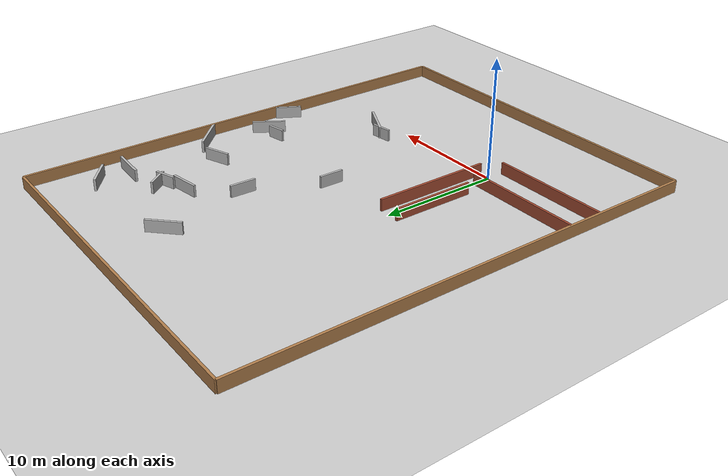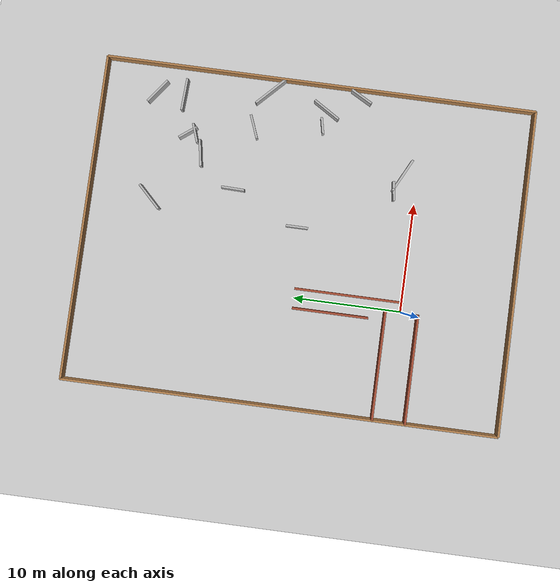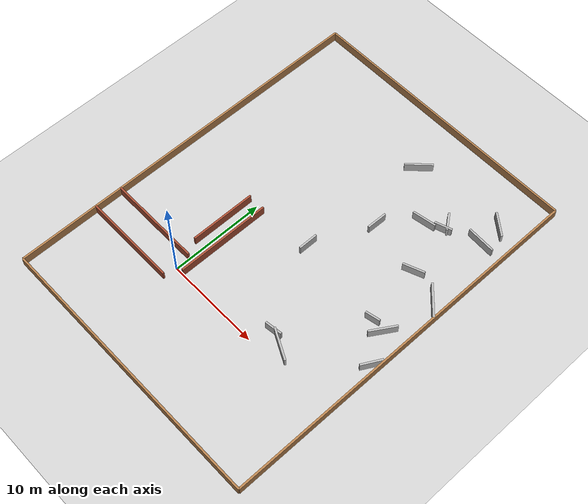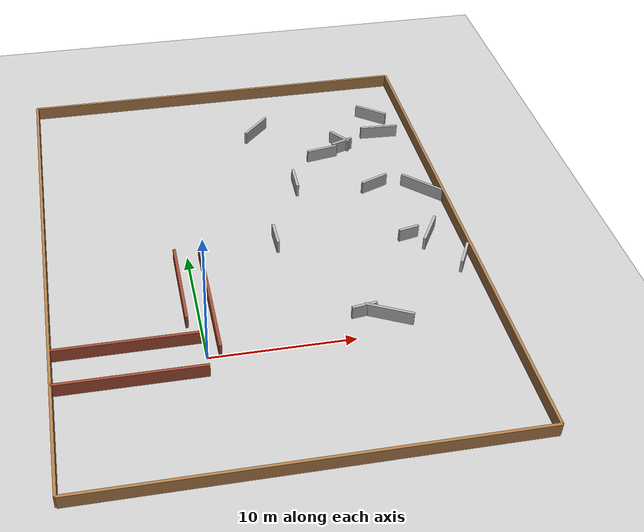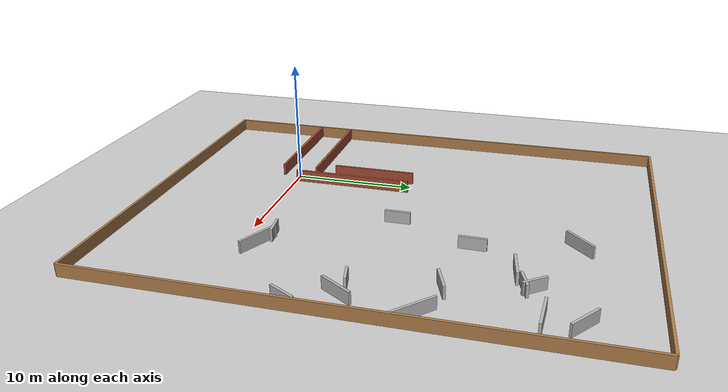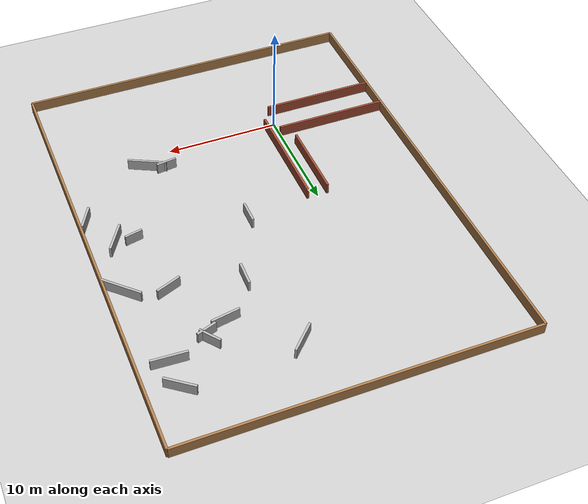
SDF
<?xml version="1.0" ?>
<sdf version="1.5">
  <world name="default">
    <include><uri>model://sun</uri></include>
    <include><uri>model://ground_plane</uri></include>

    <model name='tunnel_straight_left'>
      <static>1</static>
      <pose>-5 1.5 0.5 0 0 0</pose>
      <link name='link'>
        <collision name='collision'>
          <geometry><box><size>10 0.2 1</size></box></geometry>
        </collision>
        <visual name='visual'>
          <geometry><box><size>10 0.2 1</size></box></geometry>
          <material><script><uri>file://media/materials/scripts/gazebo.material</uri><name>Gazebo/Bricks</name></script></material>
        </visual>
      </link>
    </model>
    <model name='tunnel_straight_right'>
      <static>1</static>
      <pose>-5 -1.5 0.5 0 0 0</pose>
      <link name='link'>
        <collision name='collision'>
          <geometry><box><size>10 0.2 1</size></box></geometry>
        </collision>
        <visual name='visual'>
          <geometry><box><size>10 0.2 1</size></box></geometry>
          <material><script><uri>file://media/materials/scripts/gazebo.material</uri><name>Gazebo/Bricks</name></script></material>
        </visual>
      </link>
    </model>
    <model name='tunnel_corner_1'>
      <static>1</static>
      <pose>0.9 5 0.5 0 0 1.57</pose>
      <link name='link'>
        <collision name='collision'>
          <geometry><box><size>10 0.2 1</size></box></geometry>
        </collision>
        <visual name='visual'>
          <geometry><box><size>10 0.2 1</size></box></geometry>
          <material><script><uri>file://media/materials/scripts/gazebo.material</uri><name>Gazebo/Bricks</name></script></material>
        </visual>
      </link>
    </model>
    <model name='tunnel_corner_2'>
      <static>1</static>
      <pose>-0.9 6.5 0.5 0 0 1.57</pose>
      <link name='link'>
        <collision name='collision'>
          <geometry><box><size>7 0.2 1</size></box></geometry>
        </collision>
        <visual name='visual'>
          <geometry><box><size>7 0.2 1</size></box></geometry>
          <material><script><uri>file://media/materials/scripts/gazebo.material</uri><name>Gazebo/Bricks</name></script></material>
        </visual>
      </link>
    </model>
    <model name='border_front'>
      <static>1</static>
      <pose>20 10 0.5 0 0 1.57</pose>
      <link name='link'>
        <collision name='collision'>
          <geometry><box><size>40 0.2 1</size></box></geometry>
        </collision>
        <visual name='visual'>
          <geometry><box><size>40 0.2 1</size></box></geometry>
          <material><script><uri>file://media/materials/scripts/gazebo.material</uri><name>Gazebo/Wood</name></script></material>
        </visual>
      </link>
    </model>
    <model name='border_back'>
      <static>1</static>
      <pose>-10 10 0.5 0 0 1.57</pose>
      <link name='link'>
        <collision name='collision'>
          <geometry><box><size>40 0.2 1</size></box></geometry>
        </collision>
        <visual name='visual'>
          <geometry><box><size>40 0.2 1</size></box></geometry>
          <material><script><uri>file://media/materials/scripts/gazebo.material</uri><name>Gazebo/Wood</name></script></material>
        </visual>
      </link>
    </model>
    <model name='border_left'>
      <static>1</static>
      <pose>5 30 0.5 0 0 0</pose>
      <link name='link'>
        <collision name='collision'>
          <geometry><box><size>30 0.2 1</size></box></geometry>
        </collision>
        <visual name='visual'>
          <geometry><box><size>30 0.2 1</size></box></geometry>
          <material><script><uri>file://media/materials/scripts/gazebo.material</uri><name>Gazebo/Wood</name></script></material>
        </visual>
      </link>
    </model>
    <model name='border_right'>
      <static>1</static>
      <pose>5 -10 0.5 0 0 0</pose>
      <link name='link'>
        <collision name='collision'>
          <geometry><box><size>30 0.2 1</size></box></geometry>
        </collision>
        <visual name='visual'>
          <geometry><box><size>30 0.2 1</size></box></geometry>
          <material><script><uri>file://media/materials/scripts/gazebo.material</uri><name>Gazebo/Wood</name></script></material>
        </visual>
      </link>
    </model>
    <model name='rand_wall_0'>
      <static>1</static>
      <pose>18.71411500504143 14.571600863934602 0.5 0 0 2.366983678210422</pose>
      <link name='link'>
        <collision name='collision'>
          <geometry><box><size>3.549696357582071 0.2 1</size></box></geometry>
        </collision>
        <visual name='visual'>
          <geometry><box><size>3.549696357582071 0.2 1</size></box></geometry>
          <material><script><uri>file://media/materials/scripts/gazebo.material</uri><name>Gazebo/RustySteel</name></script></material>
        </visual>
      </link>
    </model>
    <model name='rand_wall_1'>
      <static>1</static>
      <pose>12.166789040450684 20.27399996410468 0.5 0 0 0.1709969421721105</pose>
      <link name='link'>
        <collision name='collision'>
          <geometry><box><size>2.4875654450442117 0.2 1</size></box></geometry>
        </collision>
        <visual name='visual'>
          <geometry><box><size>2.4875654450442117 0.2 1</size></box></geometry>
          <material><script><uri>file://media/materials/scripts/gazebo.material</uri><name>Gazebo/RustySteel</name></script></material>
        </visual>
      </link>
    </model>
    <model name='rand_wall_2'>
      <static>1</static>
      <pose>13.945230663631808 20.993799451429705 0.5 0 0 0.3330441324757562</pose>
      <link name='link'>
        <collision name='collision'>
          <geometry><box><size>1.7959463695801412 0.2 1</size></box></geometry>
        </collision>
        <visual name='visual'>
          <geometry><box><size>1.7959463695801412 0.2 1</size></box></geometry>
          <material><script><uri>file://media/materials/scripts/gazebo.material</uri><name>Gazebo/RustySteel</name></script></material>
        </visual>
      </link>
    </model>
    <model name='rand_wall_3'>
      <static>1</static>
      <pose>17.38529177653073 24.973932644850812 0.5 0 0 2.4886967918490726</pose>
      <link name='link'>
        <collision name='collision'>
          <geometry><box><size>2.6560816674524976 0.2 1</size></box></geometry>
        </collision>
        <visual name='visual'>
          <geometry><box><size>2.6560816674524976 0.2 1</size></box></geometry>
          <material><script><uri>file://media/materials/scripts/gazebo.material</uri><name>Gazebo/RustySteel</name></script></material>
        </visual>
      </link>
    </model>
    <model name='rand_wall_4'>
      <static>1</static>
      <pose>15.229157512977098 15.6934468344775 0.5 0 0 0.3724245305559048</pose>
      <link name='link'>
        <collision name='collision'>
          <geometry><box><size>2.2489129105617165 0.2 1</size></box></geometry>
        </collision>
        <visual name='visual'>
          <geometry><box><size>2.2489129105617165 0.2 1</size></box></geometry>
          <material><script><uri>file://media/materials/scripts/gazebo.material</uri><name>Gazebo/RustySteel</name></script></material>
        </visual>
      </link>
    </model>
    <model name='rand_wall_5'>
      <static>1</static>
      <pose>17.389614521045196 22.46340715716873 0.5 0 0 3.09128351034932</pose>
      <link name='link'>
        <collision name='collision'>
          <geometry><box><size>2.9769712925442313 0.2 1</size></box></geometry>
        </collision>
        <visual name='visual'>
          <geometry><box><size>2.9769712925442313 0.2 1</size></box></geometry>
          <material><script><uri>file://media/materials/scripts/gazebo.material</uri><name>Gazebo/RustySteel</name></script></material>
        </visual>
      </link>
    </model>
    <model name='rand_wall_6'>
      <static>1</static>
      <pose>19.309957675690708 6.144383292113326 0.5 0 0 1.0677367710643328</pose>
      <link name='link'>
        <collision name='collision'>
          <geometry><box><size>2.217540906748766 0.2 1</size></box></geometry>
        </collision>
        <visual name='visual'>
          <geometry><box><size>2.217540906748766 0.2 1</size></box></geometry>
          <material><script><uri>file://media/materials/scripts/gazebo.material</uri><name>Gazebo/RustySteel</name></script></material>
        </visual>
      </link>
    </model>
    <model name='rand_wall_7'>
      <static>1</static>
      <pose>7.525134111350734 24.3861163523945 0.5 0 0 0.7863503332888411</pose>
      <link name='link'>
        <collision name='collision'>
          <geometry><box><size>2.8418087719747103 0.2 1</size></box></geometry>
        </collision>
        <visual name='visual'>
          <geometry><box><size>2.8418087719747103 0.2 1</size></box></geometry>
          <material><script><uri>file://media/materials/scripts/gazebo.material</uri><name>Gazebo/RustySteel</name></script></material>
        </visual>
      </link>
    </model>
    <model name='rand_wall_8'>
      <static>1</static>
      <pose>10.977852385063022 2.116315888205722 0.5 0 0 0.12889091726908103</pose>
      <link name='link'>
        <collision name='collision'>
          <geometry><box><size>1.791123908252359 0.2 1</size></box></geometry>
        </collision>
        <visual name='visual'>
          <geometry><box><size>1.791123908252359 0.2 1</size></box></geometry>
          <material><script><uri>file://media/materials/scripts/gazebo.material</uri><name>Gazebo/RustySteel</name></script></material>
        </visual>
      </link>
    </model>
    <model name='rand_wall_9'>
      <static>1</static>
      <pose>9.273993609072086 16.83707773889598 0.5 0 0 1.5452640959146047</pose>
      <link name='link'>
        <collision name='collision'>
          <geometry><box><size>2.1397390186933585 0.2 1</size></box></geometry>
        </collision>
        <visual name='visual'>
          <geometry><box><size>2.1397390186933585 0.2 1</size></box></geometry>
          <material><script><uri>file://media/materials/scripts/gazebo.material</uri><name>Gazebo/RustySteel</name></script></material>
        </visual>
      </link>
    </model>
    <model name='rand_wall_10'>
      <static>1</static>
      <pose>17.670031779364763 9.219511533382265 0.5 0 0 1.014582162624001</pose>
      <link name='link'>
        <collision name='collision'>
          <geometry><box><size>2.815623805839985 0.2 1</size></box></geometry>
        </collision>
        <visual name='visual'>
          <geometry><box><size>2.815623805839985 0.2 1</size></box></geometry>
          <material><script><uri>file://media/materials/scripts/gazebo.material</uri><name>Gazebo/RustySteel</name></script></material>
        </visual>
      </link>
    </model>
    <model name='rand_wall_11'>
      <static>1</static>
      <pose>13.921092253136123 21.678416512045647 0.5 0 0 2.2181422455454443</pose>
      <link name='link'>
        <collision name='collision'>
          <geometry><box><size>1.9327946882135933 0.2 1</size></box></geometry>
        </collision>
        <visual name='visual'>
          <geometry><box><size>1.9327946882135933 0.2 1</size></box></geometry>
          <material><script><uri>file://media/materials/scripts/gazebo.material</uri><name>Gazebo/RustySteel</name></script></material>
        </visual>
      </link>
    </model>
    <model name='rand_wall_12'>
      <static>1</static>
      <pose>16.159735339519465 9.425669883716173 0.5 0 0 0.21236472897267994</pose>
      <link name='link'>
        <collision name='collision'>
          <geometry><box><size>1.5476806231196438 0.2 1</size></box></geometry>
        </collision>
        <visual name='visual'>
          <geometry><box><size>1.5476806231196438 0.2 1</size></box></geometry>
          <material><script><uri>file://media/materials/scripts/gazebo.material</uri><name>Gazebo/RustySteel</name></script></material>
        </visual>
      </link>
    </model>
    <model name='rand_wall_13'>
      <static>1</static>
      <pose>6.533704886853654 10.522067481356432 0.5 0 0 1.5688316425171716</pose>
      <link name='link'>
        <collision name='collision'>
          <geometry><box><size>2.043286422311759 0.2 1</size></box></geometry>
        </collision>
        <visual name='visual'>
          <geometry><box><size>2.043286422311759 0.2 1</size></box></geometry>
          <material><script><uri>file://media/materials/scripts/gazebo.material</uri><name>Gazebo/RustySteel</name></script></material>
        </visual>
      </link>
    </model>
    <model name='rand_wall_14'>
      <static>1</static>
      <pose>12.514228336691364 1.472128794439473 0.5 0 0 2.674704430886265</pose>
      <link name='link'>
        <collision name='collision'>
          <geometry><box><size>3.397467984005111 0.2 1</size></box></geometry>
        </collision>
        <visual name='visual'>
          <geometry><box><size>3.397467984005111 0.2 1</size></box></geometry>
          <material><script><uri>file://media/materials/scripts/gazebo.material</uri><name>Gazebo/RustySteel</name></script></material>
        </visual>
      </link>
    </model>
  </world>
</sdf>
